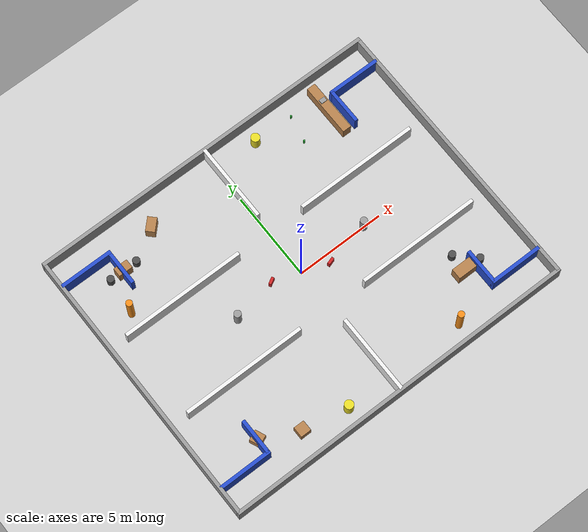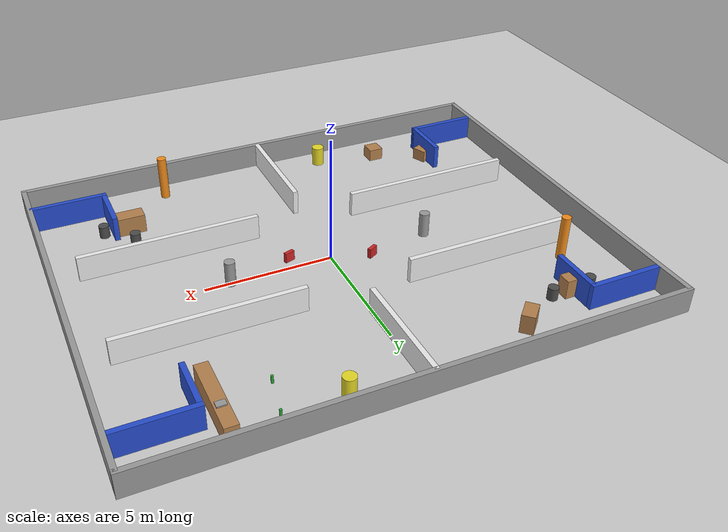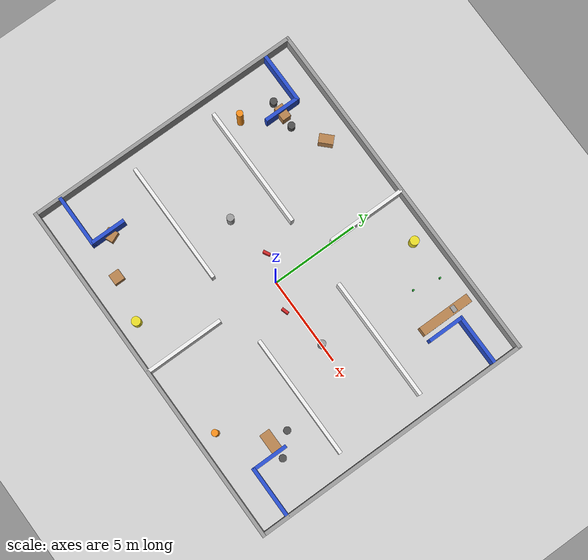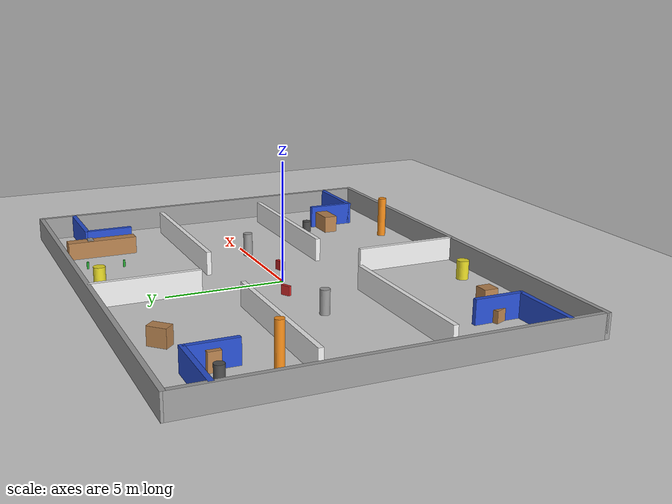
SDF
<?xml version="1.0" ?>
<sdf version="1.6">
  <world name="ursula_open_lab">

    <!-- PHYSICS                                          -->
    <physics type="ode">
      <real_time_update_rate>1000</real_time_update_rate>
      <max_step_size>0.001</max_step_size>
      <real_time_factor>1</real_time_factor>
      <ode>
        <solver>
          <type>quick</type>
          <iters>150</iters>
          <sor>1.4</sor>
          <use_dynamic_moi_rescaling>1</use_dynamic_moi_rescaling>
        </solver>
        <constraints>
          <cfm>0.00001</cfm>
          <erp>0.2</erp>
          <contact_max_correcting_vel>2000</contact_max_correcting_vel>
          <contact_surface_layer>0.01</contact_surface_layer>
        </constraints>
      </ode>
    </physics>

    <include><uri>model://sun</uri></include>
    <include><uri>model://ground_plane</uri></include>

    <!-- OUTER BOUNDARY WALLS  20m x 16m                 -->

    <model name="wall_north">
      <static>true</static><pose>0 8 0.5 0 0 0</pose>
      <link name="link">
        <collision name="c"><geometry><box><size>20.2 0.2 1.0</size></box></geometry></collision>
        <visual name="v"><geometry><box><size>20.2 0.2 1.0</size></box></geometry>
          <material><script><name>Gazebo/Grey</name></script></material></visual>
      </link>
    </model>

    <model name="wall_south">
      <static>true</static><pose>0 -8 0.5 0 0 0</pose>
      <link name="link">
        <collision name="c"><geometry><box><size>20.2 0.2 1.0</size></box></geometry></collision>
        <visual name="v"><geometry><box><size>20.2 0.2 1.0</size></box></geometry>
          <material><script><name>Gazebo/Grey</name></script></material></visual>
      </link>
    </model>

    <model name="wall_east">
      <static>true</static><pose>10 0 0.5 0 0 0</pose>
      <link name="link">
        <collision name="c"><geometry><box><size>0.2 16.0 1.0</size></box></geometry></collision>
        <visual name="v"><geometry><box><size>0.2 16.0 1.0</size></box></geometry>
          <material><script><name>Gazebo/Grey</name></script></material></visual>
      </link>
    </model>

    <model name="wall_west">
      <static>true</static><pose>-10 0 0.5 0 0 0</pose>
      <link name="link">
        <collision name="c"><geometry><box><size>0.2 16.0 1.0</size></box></geometry></collision>
        <visual name="v"><geometry><box><size>0.2 16.0 1.0</size></box></geometry>
          <material><script><name>Gazebo/Grey</name></script></material></visual>
      </link>
    </model>

    <!-- INTERIOR DIVIDING WALLS                         -->
    <!-- North divider: two segments with 2m gap each side -->

    <!-- North horizontal divider - west half -->
    <model name="div_north_west">
      <static>true</static><pose>-5.5 2.5 0.5 0 0 0</pose>
      <link name="link">
        <collision name="c"><geometry><box><size>7.0 0.2 1.0</size></box></geometry></collision>
        <visual name="v"><geometry><box><size>7.0 0.2 1.0</size></box></geometry>
          <material><script><name>Gazebo/White</name></script></material></visual>
      </link>
    </model>

    <!-- North horizontal divider - east half -->
    <model name="div_north_east">
      <static>true</static><pose>5.5 2.5 0.5 0 0 0</pose>
      <link name="link">
        <collision name="c"><geometry><box><size>7.0 0.2 1.0</size></box></geometry></collision>
        <visual name="v"><geometry><box><size>7.0 0.2 1.0</size></box></geometry>
          <material><script><name>Gazebo/White</name></script></material></visual>
      </link>
    </model>

    <!-- South horizontal divider - west half -->
    <model name="div_south_west">
      <static>true</static><pose>-5.5 -2.5 0.5 0 0 0</pose>
      <link name="link">
        <collision name="c"><geometry><box><size>7.0 0.2 1.0</size></box></geometry></collision>
        <visual name="v"><geometry><box><size>7.0 0.2 1.0</size></box></geometry>
          <material><script><name>Gazebo/White</name></script></material></visual>
      </link>
    </model>

    <!-- South horizontal divider - east half -->
    <model name="div_south_east">
      <static>true</static><pose>5.5 -2.5 0.5 0 0 0</pose>
      <link name="link">
        <collision name="c"><geometry><box><size>7.0 0.2 1.0</size></box></geometry></collision>
        <visual name="v"><geometry><box><size>7.0 0.2 1.0</size></box></geometry>
          <material><script><name>Gazebo/White</name></script></material></visual>
      </link>
    </model>

    <!-- Vertical central divider - north section (between zones A and B) -->
    <model name="div_vert_north">
      <static>true</static><pose>0 5.75 0.5 0 0 0</pose>
      <link name="link">
        <collision name="c"><geometry><box><size>0.2 4.5 1.0</size></box></geometry></collision>
        <visual name="v"><geometry><box><size>0.2 4.5 1.0</size></box></geometry>
          <material><script><name>Gazebo/White</name></script></material></visual>
      </link>
    </model>

    <!-- Vertical central divider - south section (between zones C and D) -->
    <model name="div_vert_south">
      <static>true</static><pose>0 -5.75 0.5 0 0 0</pose>
      <link name="link">
        <collision name="c"><geometry><box><size>0.2 4.5 1.0</size></box></geometry></collision>
        <visual name="v"><geometry><box><size>0.2 4.5 1.0</size></box></geometry>
          <material><script><name>Gazebo/White</name></script></material></visual>
      </link>
    </model>

    <!-- ALCOVE / NOOK WALLS                             -->
    <!-- Give SLAM distinctive loop-closure features     -->

    <!-- NW alcove -->
    <model name="alcove_nw_a">
      <static>true</static><pose>-8.5 6.5 0.5 0 0 0</pose>
      <link name="link">
        <collision name="c"><geometry><box><size>3.0 0.2 1.0</size></box></geometry></collision>
        <visual name="v"><geometry><box><size>3.0 0.2 1.0</size></box></geometry>
          <material><script><name>Gazebo/Blue</name></script></material></visual>
      </link>
    </model>
    <model name="alcove_nw_b">
      <static>true</static><pose>-7.1 5.5 0.5 0 0 0</pose>
      <link name="link">
        <collision name="c"><geometry><box><size>0.2 2.0 1.0</size></box></geometry></collision>
        <visual name="v"><geometry><box><size>0.2 2.0 1.0</size></box></geometry>
          <material><script><name>Gazebo/Blue</name></script></material></visual>
      </link>
    </model>

    <!-- NE alcove -->
    <model name="alcove_ne_a">
      <static>true</static><pose>8.5 6.5 0.5 0 0 0</pose>
      <link name="link">
        <collision name="c"><geometry><box><size>3.0 0.2 1.0</size></box></geometry></collision>
        <visual name="v"><geometry><box><size>3.0 0.2 1.0</size></box></geometry>
          <material><script><name>Gazebo/Blue</name></script></material></visual>
      </link>
    </model>
    <model name="alcove_ne_b">
      <static>true</static><pose>7.1 5.5 0.5 0 0 0</pose>
      <link name="link">
        <collision name="c"><geometry><box><size>0.2 2.0 1.0</size></box></geometry></collision>
        <visual name="v"><geometry><box><size>0.2 2.0 1.0</size></box></geometry>
          <material><script><name>Gazebo/Blue</name></script></material></visual>
      </link>
    </model>

    <!-- SW alcove -->
    <model name="alcove_sw_a">
      <static>true</static><pose>-8.5 -6.5 0.5 0 0 0</pose>
      <link name="link">
        <collision name="c"><geometry><box><size>3.0 0.2 1.0</size></box></geometry></collision>
        <visual name="v"><geometry><box><size>3.0 0.2 1.0</size></box></geometry>
          <material><script><name>Gazebo/Blue</name></script></material></visual>
      </link>
    </model>
    <model name="alcove_sw_b">
      <static>true</static><pose>-7.1 -5.5 0.5 0 0 0</pose>
      <link name="link">
        <collision name="c"><geometry><box><size>0.2 2.0 1.0</size></box></geometry></collision>
        <visual name="v"><geometry><box><size>0.2 2.0 1.0</size></box></geometry>
          <material><script><name>Gazebo/Blue</name></script></material></visual>
      </link>
    </model>

    <!-- SE alcove -->
    <model name="alcove_se_a">
      <static>true</static><pose>8.5 -6.5 0.5 0 0 0</pose>
      <link name="link">
        <collision name="c"><geometry><box><size>3.0 0.2 1.0</size></box></geometry></collision>
        <visual name="v"><geometry><box><size>3.0 0.2 1.0</size></box></geometry>
          <material><script><name>Gazebo/Blue</name></script></material></visual>
      </link>
    </model>
    <model name="alcove_se_b">
      <static>true</static><pose>7.1 -5.5 0.5 0 0 0</pose>
      <link name="link">
        <collision name="c"><geometry><box><size>0.2 2.0 1.0</size></box></geometry></collision>
        <visual name="v"><geometry><box><size>0.2 2.0 1.0</size></box></geometry>
          <material><script><name>Gazebo/Blue</name></script></material></visual>
      </link>
    </model>

    <!-- ZONE A (NW) — Tables and chairs                  -->
    <!-- Represent: chair (56), person (0)                -->

    <!-- Table A1 (box = tabletop ~0.8m x 0.5m x 0.75m tall) -->
    <model name="table_a1">
      <static>true</static><pose>-7.0 5.5 0.375 0 0 0</pose>
      <link name="link">
        <collision name="c"><geometry><box><size>0.8 0.5 0.75</size></box></geometry></collision>
        <visual name="v"><geometry><box><size>0.8 0.5 0.75</size></box></geometry>
          <material><script><name>Gazebo/Wood</name></script></material></visual>
      </link>
    </model>

    <!-- Chair A1 (cylinder ~0.4m dia, 0.5m tall) -->
    <model name="chair_a1">
      <static>true</static><pose>-6.2 5.5 0.25 0 0 0</pose>
      <link name="link">
        <collision name="c"><geometry><cylinder><radius>0.2</radius><length>0.5</length></cylinder></geometry></collision>
        <visual name="v"><geometry><cylinder><radius>0.2</radius><length>0.5</length></cylinder></geometry>
          <material><script><name>Gazebo/DarkGrey</name></script></material></visual>
      </link>
    </model>

    <model name="chair_a2">
      <static>true</static><pose>-7.8 5.5 0.25 0 0 0</pose>
      <link name="link">
        <collision name="c"><geometry><cylinder><radius>0.2</radius><length>0.5</length></cylinder></geometry></collision>
        <visual name="v"><geometry><cylinder><radius>0.2</radius><length>0.5</length></cylinder></geometry>
          <material><script><name>Gazebo/DarkGrey</name></script></material></visual>
      </link>
    </model>

    <!-- Table A2 -->
    <model name="table_a2">
      <static>true</static><pose>-4.5 6.5 0.375 0 0 0.785</pose>
      <link name="link">
        <collision name="c"><geometry><box><size>0.8 0.5 0.75</size></box></geometry></collision>
        <visual name="v"><geometry><box><size>0.8 0.5 0.75</size></box></geometry>
          <material><script><name>Gazebo/Wood</name></script></material></visual>
      </link>
    </model>

    <!-- Person-sized post (COCO class 0 = person analogue) -->
    <model name="person_a1">
      <static>true</static><pose>-8.0 3.5 0.9 0 0 0</pose>
      <link name="link">
        <collision name="c"><geometry><cylinder><radius>0.18</radius><length>1.8</length></cylinder></geometry></collision>
        <visual name="v"><geometry><cylinder><radius>0.18</radius><length>1.8</length></cylinder></geometry>
          <material><script><name>Gazebo/Orange</name></script></material></visual>
      </link>
    </model>

    <!-- ZONE B (NE) — Laptops and bottles               -->
    <!-- Represent: laptop (63), bottle (39)              -->

    <!-- Workbench B1 (long table) -->
    <model name="bench_b1">
      <static>true</static><pose>6.5 6.0 0.375 0 0 0</pose>
      <link name="link">
        <collision name="c"><geometry><box><size>0.5 3.0 0.75</size></box></geometry></collision>
        <visual name="v"><geometry><box><size>0.5 3.0 0.75</size></box></geometry>
          <material><script><name>Gazebo/Wood</name></script></material></visual>
      </link>
    </model>

    <!-- Laptop-sized box on bench (thin flat box) -->
    <model name="laptop_b1">
      <static>true</static><pose>6.5 6.5 0.78 0 0 0</pose>
      <link name="link">
        <collision name="c"><geometry><box><size>0.35 0.25 0.05</size></box></geometry></collision>
        <visual name="v"><geometry><box><size>0.35 0.25 0.05</size></box></geometry>
          <material><script><name>Gazebo/Grey</name></script></material></visual>
      </link>
    </model>

    <!-- Bottle (tall thin cylinder) -->
    <model name="bottle_b1">
      <static>true</static><pose>4.5 5.5 0.15 0 0 0</pose>
      <link name="link">
        <collision name="c"><geometry><cylinder><radius>0.05</radius><length>0.3</length></cylinder></geometry></collision>
        <visual name="v"><geometry><cylinder><radius>0.05</radius><length>0.3</length></cylinder></geometry>
          <material><script><name>Gazebo/Green</name></script></material></visual>
      </link>
    </model>

    <model name="bottle_b2">
      <static>true</static><pose>4.8 7.0 0.15 0 0 0</pose>
      <link name="link">
        <collision name="c"><geometry><cylinder><radius>0.05</radius><length>0.3</length></cylinder></geometry></collision>
        <visual name="v"><geometry><cylinder><radius>0.05</radius><length>0.3</length></cylinder></geometry>
          <material><script><name>Gazebo/Green</name></script></material></visual>
      </link>
    </model>

    <!-- CENTRAL CORRIDOR — Books and misc               -->
    <!-- Represent: book (73), cell phone (67)           -->
    <!-- Also: navigation challenge pillars              -->

    <!-- Navigation pillars (round) - force obstacle avoidance -->
    <model name="pillar_c1">
      <static>true</static><pose>-4.0 0 0.5 0 0 0</pose>
      <link name="link">
        <collision name="c"><geometry><cylinder><radius>0.2</radius><length>1.0</length></cylinder></geometry></collision>
        <visual name="v"><geometry><cylinder><radius>0.2</radius><length>1.0</length></cylinder></geometry>
          <material><script><name>Gazebo/Grey</name></script></material></visual>
      </link>
    </model>

    <model name="pillar_c2">
      <static>true</static><pose>4.0 0 0.5 0 0 0</pose>
      <link name="link">
        <collision name="c"><geometry><cylinder><radius>0.2</radius><length>1.0</length></cylinder></geometry></collision>
        <visual name="v"><geometry><cylinder><radius>0.2</radius><length>1.0</length></cylinder></geometry>
          <material><script><name>Gazebo/Grey</name></script></material></visual>
      </link>
    </model>

    <!-- Bookshelf stub (flat box representing book stack) -->
    <model name="books_c1">
      <static>true</static><pose>-1.5 0.5 0.2 0 0 0.5</pose>
      <link name="link">
        <collision name="c"><geometry><box><size>0.4 0.15 0.4</size></box></geometry></collision>
        <visual name="v"><geometry><box><size>0.4 0.15 0.4</size></box></geometry>
          <material><script><name>Gazebo/Red</name></script></material></visual>
      </link>
    </model>

    <model name="books_c2">
      <static>true</static><pose>1.5 -0.5 0.2 0 0 0.3</pose>
      <link name="link">
        <collision name="c"><geometry><box><size>0.4 0.15 0.4</size></box></geometry></collision>
        <visual name="v"><geometry><box><size>0.4 0.15 0.4</size></box></geometry>
          <material><script><name>Gazebo/Red</name></script></material></visual>
      </link>
    </model>

    <!-- ZONE C (SW) — Open, good for Nav2 testing       -->

    <!-- Two crates for variety -->
    <model name="crate_c1">
      <static>true</static><pose>-7.0 -5.5 0.25 0 0 0.4</pose>
      <link name="link">
        <collision name="c"><geometry><box><size>0.6 0.6 0.5</size></box></geometry></collision>
        <visual name="v"><geometry><box><size>0.6 0.6 0.5</size></box></geometry>
          <material><script><name>Gazebo/WoodPallet</name></script></material></visual>
      </link>
    </model>

    <model name="crate_c2">
      <static>true</static><pose>-5.0 -6.5 0.25 0 0 0</pose>
      <link name="link">
        <collision name="c"><geometry><box><size>0.6 0.6 0.5</size></box></geometry></collision>
        <visual name="v"><geometry><box><size>0.6 0.6 0.5</size></box></geometry>
          <material><script><name>Gazebo/WoodPallet</name></script></material></visual>
      </link>
    </model>

    <!-- ZONE D (SE) — Chairs and more tables            -->

    <model name="table_d1">
      <static>true</static><pose>6.5 -5.0 0.375 0 0 0</pose>
      <link name="link">
        <collision name="c"><geometry><box><size>1.2 0.6 0.75</size></box></geometry></collision>
        <visual name="v"><geometry><box><size>1.2 0.6 0.75</size></box></geometry>
          <material><script><name>Gazebo/Wood</name></script></material></visual>
      </link>
    </model>

    <model name="chair_d1">
      <static>true</static><pose>6.5 -4.0 0.25 0 0 0</pose>
      <link name="link">
        <collision name="c"><geometry><cylinder><radius>0.2</radius><length>0.5</length></cylinder></geometry></collision>
        <visual name="v"><geometry><cylinder><radius>0.2</radius><length>0.5</length></cylinder></geometry>
          <material><script><name>Gazebo/DarkGrey</name></script></material></visual>
      </link>
    </model>

    <model name="chair_d2">
      <static>true</static><pose>7.5 -5.0 0.25 0 0 0</pose>
      <link name="link">
        <collision name="c"><geometry><cylinder><radius>0.2</radius><length>0.5</length></cylinder></geometry></collision>
        <visual name="v"><geometry><cylinder><radius>0.2</radius><length>0.5</length></cylinder></geometry>
          <material><script><name>Gazebo/DarkGrey</name></script></material></visual>
      </link>
    </model>

    <!-- Person-sized post Zone D -->
    <model name="person_d1">
      <static>true</static><pose>4.5 -7.0 0.9 0 0 0</pose>
      <link name="link">
        <collision name="c"><geometry><cylinder><radius>0.18</radius><length>1.8</length></cylinder></geometry></collision>
        <visual name="v"><geometry><cylinder><radius>0.18</radius><length>1.8</length></cylinder></geometry>
          <material><script><name>Gazebo/Orange</name></script></material></visual>
      </link>
    </model>

    <!-- MISC SCATTERED OBJECTS for LiDAR variety        -->

    <model name="barrel_1">
      <static>true</static><pose>-2.5 -7.0 0.4 0 0 0</pose>
      <link name="link">
        <collision name="c"><geometry><cylinder><radius>0.25</radius><length>0.8</length></cylinder></geometry></collision>
        <visual name="v"><geometry><cylinder><radius>0.25</radius><length>0.8</length></cylinder></geometry>
          <material><script><name>Gazebo/Yellow</name></script></material></visual>
      </link>
    </model>

    <model name="barrel_2">
      <static>true</static><pose>2.5 7.0 0.4 0 0 0</pose>
      <link name="link">
        <collision name="c"><geometry><cylinder><radius>0.25</radius><length>0.8</length></cylinder></geometry></collision>
        <visual name="v"><geometry><cylinder><radius>0.25</radius><length>0.8</length></cylinder></geometry>
          <material><script><name>Gazebo/Yellow</name></script></material></visual>
      </link>
    </model>

  </world>
</sdf>
